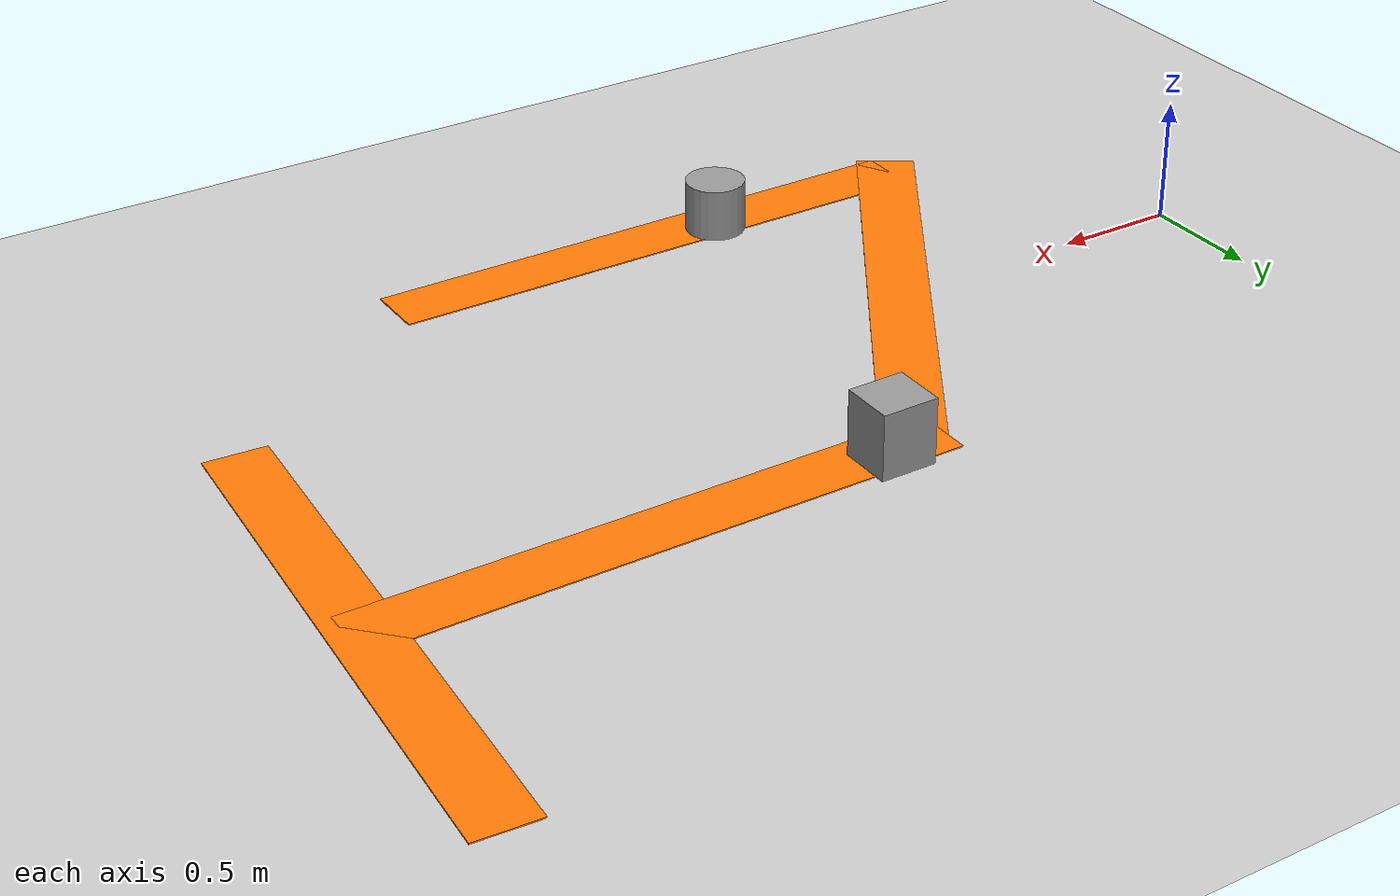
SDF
<sdf version="1.6">
 <world name="default">
  <light name="sun" type="directional">
   <pose>0 0 10 0 -0 0</pose>
   <diffuse>0.8 0.8 0.8 1</diffuse>
   <specular>0.2 0.2 0.2 1</specular>
   <attenuation>
    <range>1000</range>
    <constant>0.9</constant>
    <linear>0.01</linear>
    <quadratic>0.001</quadratic>
   </attenuation>
   <direction>-0.5 0.1 -0.9</direction>
  </light>
  <model name="ground_plane">
   <static>1</static>
   <link name="link">
    <collision name="collision">
     <geometry><plane><normal>0 0 1</normal><size>100 100</size></plane></geometry>
     <surface>
      <contact><collide_bitmask>65535</collide_bitmask></contact>
      <friction><ode><mu>100</mu><mu2>50</mu2></ode></friction>
     </surface>
    </collision>
    <visual name="visual">
     <cast_shadows>0</cast_shadows>
     <geometry><plane><normal>0 0 1</normal><size>100 100</size></plane></geometry>
     <material>
      <script><uri>file://media/materials/scripts/gazebo.material</uri><name>Gazebo/Grey</name></script>
     </material>
    </visual>
   </link>
  </model>
  <gravity>0 0 -9.8</gravity>
  <magnetic_field>6e-06 2.3e-05 -4.2e-05</magnetic_field>
  <atmosphere type="adiabatic"/>
  <physics name="default_physics" default="0" type="ode">
   <max_step_size>0.001</max_step_size>
   <real_time_factor>1</real_time_factor>
   <real_time_update_rate>1000</real_time_update_rate>
  </physics>
  <scene><ambient>0.4 0.4 0.4 1</ambient><background>0.7 0.7 0.7 1</background><shadows>1</shadows></scene>
  <audio><device>default</device></audio>
  <spherical_coordinates>
   <surface_model>EARTH_WGS84</surface_model>
   <latitude_deg>0</latitude_deg>
   <longitude_deg>0</longitude_deg>
   <elevation>0</elevation>
   <heading_deg>0</heading_deg>
  </spherical_coordinates>
  <model name="road2">
   <pose>1.2 -0.002226 -0.01 1.57 0 1</pose>
   <link name="Wall_3">
    <collision name="Wall_3_Collision">
     <geometry><box><size>2.37 0.02 0.25</size></box></geometry>
     <pose>0 0 0.125 0 -0 0</pose>
    </collision>
    <visual name="Wall_3_Visual">
     <pose>0 0 0.125 0 -0 0</pose>
     <geometry><box><size>2.37 0.02 0.25</size></box></geometry>
     <material>
      <script><uri>file://media/materials/scripts/gazebo.material</uri><name>Gazebo/Grey</name></script>
      <ambient>0.996078 0.47451 0.0196078 1</ambient>
     </material>
     <meta><layer>0</layer></meta>
    </visual>
   </link>
   <static>1</static>
  </model>
  <model name="road2_clone">
   <pose>3 1.04354 -0.01 1.57 -0 0</pose>
   <link name="Wall_3">
    <collision name="Wall_3_Collision">
     <geometry><box><size>2.37 0.02 0.25</size></box></geometry>
     <pose>0 0 0.125 0 -0 0</pose>
    </collision>
    <visual name="Wall_3_Visual">
     <pose>0 0 0.125 0 -0 0</pose>
     <geometry><box><size>2.37 0.02 0.25</size></box></geometry>
     <material>
      <script><uri>file://media/materials/scripts/gazebo.material</uri><name>Gazebo/Grey</name></script>
      <ambient>0.996078 0.47451 0.0196078 1</ambient>
     </material>
     <meta><layer>0</layer></meta>
    </visual>
   </link>
   <static>1</static>
  </model>
  <model name="road2_clone_0">
   <pose>1.9 -0.848808 -0.01 1.57 -0 0</pose>
   <link name="Wall_3">
    <collision name="Wall_3_Collision">
     <geometry><box><size>2.37 0.02 0.25</size></box></geometry>
     <pose>0 0 0.125 0 -0 0</pose>
    </collision>
    <visual name="Wall_3_Visual">
     <pose>0 0 0.125 0 -0 0</pose>
     <geometry><box><size>2.37 0.02 0.25</size></box></geometry>
     <material>
      <script><uri>file://media/materials/scripts/gazebo.material</uri><name>Gazebo/Grey</name></script>
      <ambient>0.996078 0.47451 0.0196078 1</ambient>
     </material>
     <meta><layer>0</layer></meta>
    </visual>
   </link>
   <static>1</static>
  </model>
  <model name="road2_clone_1">
   <pose>4 0.875706 -0.01 1.57 -0 1.5</pose>
   <link name="Wall_3">
    <collision name="Wall_3_Collision">
     <geometry><box><size>2.37 0.02 0.25</size></box></geometry>
     <pose>0 0 0.125 0 -0 0</pose>
    </collision>
    <visual name="Wall_3_Visual">
     <pose>0 0 0.125 0 -0 0</pose>
     <geometry><box><size>2.37 0.02 0.25</size></box></geometry>
     <material>
      <script><uri>file://media/materials/scripts/gazebo.material</uri><name>Gazebo/Grey</name></script>
      <ambient>0.996078 0.47451 0.0196078 1</ambient>
     </material>
     <meta><layer>0</layer></meta>
    </visual>
   </link>
   <static>1</static>
  </model>
  <model name="unit_cylinder">
   <pose>1.63409 -0.91728 0.109173 -0.000609 4e-06 0.002194</pose>
   <link name="link">
    <inertial>
     <mass>1</mass>
     <inertia><ixx>0.145833</ixx><ixy>0</ixy><ixz>0</ixz><iyy>0.145833</iyy><iyz>0</iyz><izz>0.125</izz></inertia>
    </inertial>
    <collision name="collision">
     <geometry><cylinder><radius>0.123891</radius><length>0.218207</length></cylinder></geometry>
    </collision>
    <visual name="visual">
     <geometry><cylinder><radius>0.123891</radius><length>0.218207</length></cylinder></geometry>
     <material>
      <script><name>Gazebo/Grey</name><uri>file://media/materials/scripts/gazebo.material</uri></script>
     </material>
    </visual>
   </link>
  </model>
  <model name="unit_box">
   <pose>2.0869 0.978444 0.13462 -0.000839 1.8e-05 6e-06</pose>
   <link name="link">
    <inertial>
     <mass>1</mass>
     <inertia>
      <ixx>0.166667</ixx>
      <ixy>0</ixy>
      <ixz>0</ixz>
      <iyy>0.166667</iyy>
      <iyz>0</iyz>
      <izz>0.166667</izz>
     </inertia>
    </inertial>
    <collision name="collision">
     <geometry><box><size>0.229953 0.218489 0.269052</size></box></geometry>
    </collision>
    <visual name="visual">
     <geometry><box><size>0.229953 0.218489 0.269052</size></box></geometry>
     <material>
      <script><name>Gazebo/Grey</name><uri>file://media/materials/scripts/gazebo.material</uri></script>
     </material>
    </visual>
   </link>
  </model>
 </world>
</sdf>
